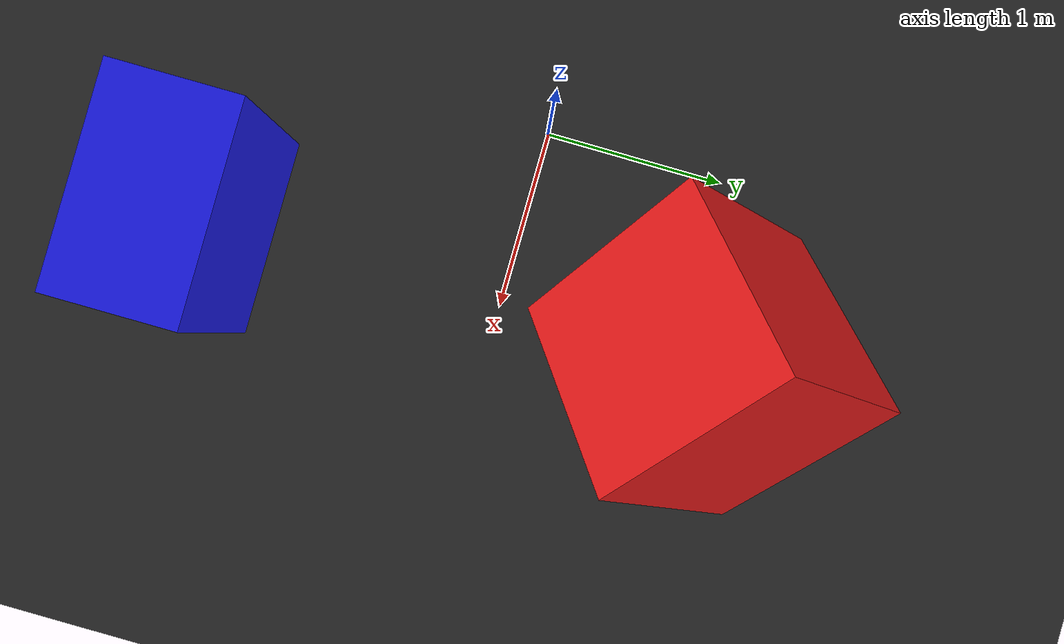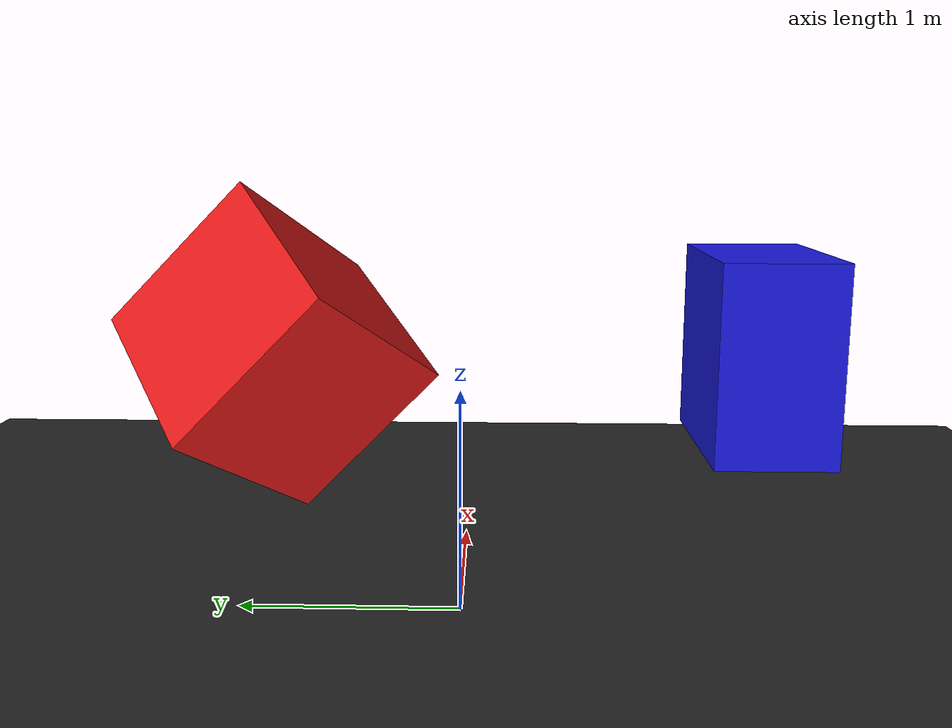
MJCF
<mujoco model="Lagyi">

  <compiler angle="radian"/>
  <visual>
    <quality shadowsize="4096"/>
  </visual>

  <asset>

    <texture type="skybox" builtin="gradient" rgb1=".3 .5 .7" rgb2="0 0 0" width="512" height="512"/>
    <texture name="grid" type="2d" builtin="checker" width="512" height="512" rgb1=".1 .1 .1" rgb2=".2 .2 .2"/>
    <material name="grid" texture="grid" texrepeat="1 1" texuniform="true" reflectance=".05"/>
  </asset>

  <worldbody>
    <camera pos="2.867 -5.173 1.776" xyaxes="0.875 0.485 0.000 -0.139 0.252 0.958"/>
    <geom size="20 20 .05" type="plane" material="grid" condim="3"/>

    <light dir="0 -0.3 -1" diffuse=".9 .9 .9" specular="0.6 0.9 0.6" pos="1 1 15" cutoff="70"/>
    <light dir="-.2 1 -.4" diffuse=".9 .9 .9" specular="0.6 0.9 0.6" pos="2 -5 6" cutoff="70"/>

    <geom name="redCube" type="box" size="0.5 0.5 0.5" pos="1 1 1" rgba="0.9 0.1 0.1 1.0" euler="0.78 0 0.78" />
    <geom name="blueCube" type="box" size="0.5 0.3 0.5" pos="1 -1.5 1" rgba="0.1 0.1 0.9 1.0" />

  </worldbody>

</mujoco>
